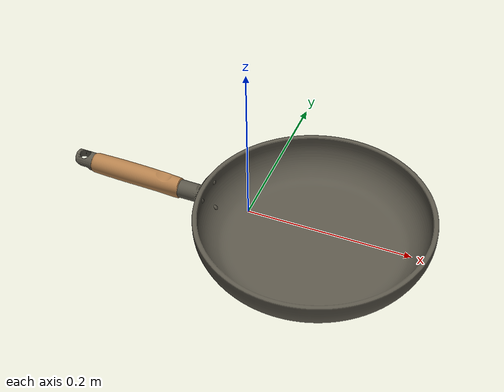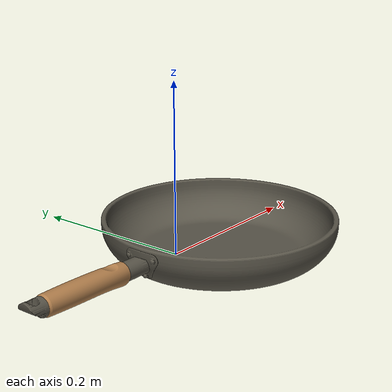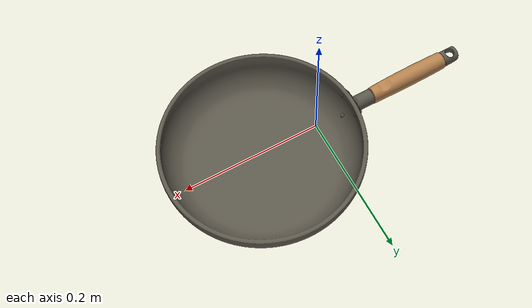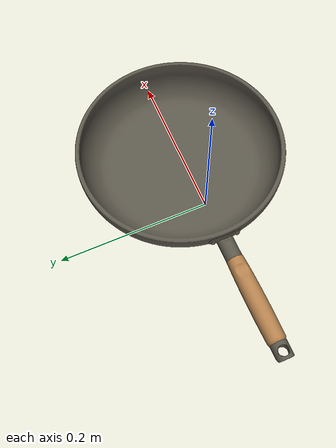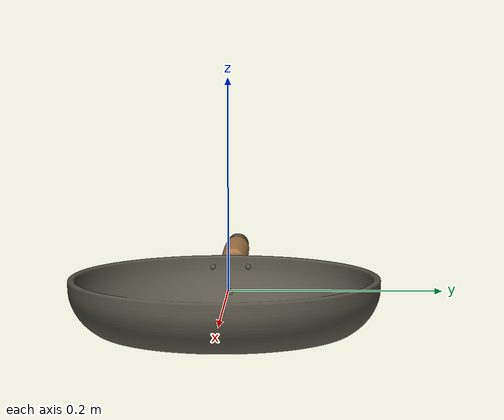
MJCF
<?xml version="1.0" ?>
<mujoco model="pan">
	<compiler angle="radian" meshdir="../meshes/" texturedir="../textures/" autolimits="true" inertiafromgeom="false"/>
	<default>
		<default class="pan_visual">
			<geom contype="0" conaffinity="0" />
		</default>
		<default class="pan_collision">
			<geom rgba="0.9 0.9 0.9 0.0" />
		</default>
	</default>
	<asset>
		<mesh name="PanMetal" file="stl/PanMetal.stl" scale="1.0 1.0 1.0"/>
		<mesh name="HandleMetal" file="stl/HandleMetal.stl" scale="1.0 1.0 1.0"/>
		<mesh name="HandleWooden" file="obj/HandleWooden.obj" scale="1.0 1.0 1.0"/>
		<material name="M_PanMetal" rgba="0.35010001063346863 0.3345000147819519 0.2874999940395355 1.0" emission="0.0"/>
		<material name="M_HandleMetal" rgba="0.35010001063346863 0.3345000147819519 0.2874999940395355 1.0" emission="0.0"/>
		<material name="M_HandleWooden" texture="T_HandleWooden"/>
		<texture name="T_HandleWooden" type="2d" file="T_HandleWooden.png"/>
	</asset>
	<asset>
		<mesh name="UCX_Pan_001" file="stl/UCX_Pan_001.stl" />
		<mesh name="UCX_Pan_002" file="stl/UCX_Pan_002.stl" />
		<mesh name="UCX_Pan_003" file="stl/UCX_Pan_003.stl" />
		<mesh name="UCX_Pan_004" file="stl/UCX_Pan_004.stl" />
		<mesh name="UCX_Pan_005" file="stl/UCX_Pan_005.stl" />
		<mesh name="UCX_Pan_006" file="stl/UCX_Pan_006.stl" />
		<mesh name="UCX_Pan_007" file="stl/UCX_Pan_007.stl" />
		<mesh name="UCX_Pan_008" file="stl/UCX_Pan_008.stl" />
		<mesh name="UCX_Pan_009" file="stl/UCX_Pan_009.stl" />
		<mesh name="UCX_Pan_010" file="stl/UCX_Pan_010.stl" />
		<mesh name="UCX_Pan_011" file="stl/UCX_Pan_011.stl" />
		<mesh name="UCX_Pan_012" file="stl/UCX_Pan_012.stl" />
		<mesh name="UCX_Pan_013" file="stl/UCX_Pan_013.stl" />
		<mesh name="UCX_Pan_014" file="stl/UCX_Pan_014.stl" />
		<mesh name="UCX_Pan_015" file="stl/UCX_Pan_015.stl" />
		<mesh name="UCX_Pan_016" file="stl/UCX_Pan_016.stl" />
		<mesh name="UCX_Pan_017" file="stl/UCX_Pan_017.stl" />
		<mesh name="UCX_Pan_018" file="stl/UCX_Pan_018.stl" />
		<mesh name="UCX_Pan_019" file="stl/UCX_Pan_019.stl" />
		<mesh name="UCX_Pan_020" file="stl/UCX_Pan_020.stl" />
		<mesh name="UCX_Pan_021" file="stl/UCX_Pan_021.stl" />
		<mesh name="UCX_Pan_022" file="stl/UCX_Pan_022.stl" />
		<mesh name="UCX_Pan_023" file="stl/UCX_Pan_023.stl" />
		<mesh name="UCX_Pan_024" file="stl/UCX_Pan_024.stl" />
		<mesh name="UCX_Pan_025" file="stl/UCX_Pan_025.stl" />
		<mesh name="UCX_Pan_026" file="stl/UCX_Pan_026.stl" />
		<mesh name="UCX_Pan_027" file="stl/UCX_Pan_027.stl" />
		<mesh name="UCX_Pan_028" file="stl/UCX_Pan_028.stl" />
		<mesh name="UCX_Pan_029" file="stl/UCX_Pan_029.stl" />
		<mesh name="UCX_Pan_030" file="stl/UCX_Pan_030.stl" />
		<mesh name="UCX_Pan_031" file="stl/UCX_Pan_031.stl" />
		<mesh name="UCX_Pan_032" file="stl/UCX_Pan_032.stl" />
		<mesh name="UCX_Pan_033" file="stl/UCX_Pan_033.stl" />
		<mesh name="UCX_Pan_034" file="stl/UCX_Pan_034.stl" />
		<mesh name="UCX_Pan_035" file="stl/UCX_Pan_035.stl" />
		<mesh name="UCX_Pan_036" file="stl/UCX_Pan_036.stl" />
		<mesh name="UCX_Pan_037" file="stl/UCX_Pan_037.stl" />
		<mesh name="UCX_Pan_038" file="stl/UCX_Pan_038.stl" />
		<mesh name="UCX_Pan_039" file="stl/UCX_Pan_039.stl" />
		<mesh name="UCX_Pan_040" file="stl/UCX_Pan_040.stl" />
		<mesh name="UCX_Pan_041" file="stl/UCX_Pan_041.stl" />
		<mesh name="UCX_Pan_042" file="stl/UCX_Pan_042.stl" />
		<mesh name="UCX_Pan_043" file="stl/UCX_Pan_043.stl" />
		<mesh name="UCX_Pan_044" file="stl/UCX_Pan_044.stl" />
		<mesh name="UCX_Pan_045" file="stl/UCX_Pan_045.stl" />
		<mesh name="UCX_Pan_046" file="stl/UCX_Pan_046.stl" />
		<mesh name="UCX_Pan_047" file="stl/UCX_Pan_047.stl" />
		<mesh name="UCX_Pan_048" file="stl/UCX_Pan_048.stl" />
		<mesh name="UCX_Pan_049" file="stl/UCX_Pan_049.stl" />
		<mesh name="UCX_Pan_050" file="stl/UCX_Pan_050.stl" />
		<mesh name="UCX_Pan_051" file="stl/UCX_Pan_051.stl" />
		<mesh name="UCX_Pan_052" file="stl/UCX_Pan_052.stl" />
		<mesh name="UCX_Pan_053" file="stl/UCX_Pan_053.stl" />
		<mesh name="UCX_Pan_054" file="stl/UCX_Pan_054.stl" />
		<mesh name="UCX_Pan_055" file="stl/UCX_Pan_055.stl" />
		<mesh name="UCX_Pan_056" file="stl/UCX_Pan_056.stl" />
		<mesh name="UCX_Pan_057" file="stl/UCX_Pan_057.stl" />
		<mesh name="UCX_Pan_058" file="stl/UCX_Pan_058.stl" />
		<mesh name="UCX_Pan_059" file="stl/UCX_Pan_059.stl" />
		<mesh name="UCX_Pan_060" file="stl/UCX_Pan_060.stl" />
		<mesh name="UCX_Pan_061" file="stl/UCX_Pan_061.stl" />
		<mesh name="UCX_Pan_062" file="stl/UCX_Pan_062.stl" />
		<mesh name="UCX_Pan_063" file="stl/UCX_Pan_063.stl" />
		<mesh name="UCX_Pan_064" file="stl/UCX_Pan_064.stl" />
		<mesh name="UCX_Pan_065" file="stl/UCX_Pan_065.stl" />
		<mesh name="UCX_Pan_066" file="stl/UCX_Pan_066.stl" />
		<mesh name="UCX_Pan_067" file="stl/UCX_Pan_067.stl" />
		<mesh name="UCX_Pan_068" file="stl/UCX_Pan_068.stl" />
		<mesh name="UCX_Pan_069" file="stl/UCX_Pan_069.stl" />
		<mesh name="UCX_Pan_070" file="stl/UCX_Pan_070.stl" />
		<mesh name="UCX_Pan_071" file="stl/UCX_Pan_071.stl" />
		<mesh name="UCX_Pan_072" file="stl/UCX_Pan_072.stl" />
		<mesh name="UCX_Pan_073" file="stl/UCX_Pan_073.stl" />
		<mesh name="UCX_Pan_074" file="stl/UCX_Pan_074.stl" />
		<mesh name="UCX_Pan_075" file="stl/UCX_Pan_075.stl" />
		<mesh name="UCX_Pan_076" file="stl/UCX_Pan_076.stl" />
		<mesh name="UCX_Pan_077" file="stl/UCX_Pan_077.stl" />
		<mesh name="UCX_Pan_078" file="stl/UCX_Pan_078.stl" />
		<mesh name="UCX_Pan_079" file="stl/UCX_Pan_079.stl" />
		<mesh name="UCX_Pan_080" file="stl/UCX_Pan_080.stl" />
		<mesh name="UCX_Pan_081" file="stl/UCX_Pan_081.stl" />
		<mesh name="UCX_Pan_082" file="stl/UCX_Pan_082.stl" />
		<mesh name="UCX_Pan_083" file="stl/UCX_Pan_083.stl" />
		<mesh name="UCX_Pan_084" file="stl/UCX_Pan_084.stl" />
		<mesh name="UCX_Pan_085" file="stl/UCX_Pan_085.stl" />
		<mesh name="UCX_Pan_086" file="stl/UCX_Pan_086.stl" />
		<mesh name="UCX_Pan_087" file="stl/UCX_Pan_087.stl" />
		<mesh name="UCX_Pan_088" file="stl/UCX_Pan_088.stl" />
		<mesh name="UCX_Pan_089" file="stl/UCX_Pan_089.stl" />
		<mesh name="UCX_Pan_090" file="stl/UCX_Pan_090.stl" />
		<mesh name="UCX_Pan_091" file="stl/UCX_Pan_091.stl" />
		<mesh name="UCX_Pan_092" file="stl/UCX_Pan_092.stl" />
		<mesh name="UCX_Pan_093" file="stl/UCX_Pan_093.stl" />
		<mesh name="UCX_Pan_094" file="stl/UCX_Pan_094.stl" />
		<mesh name="UCX_Pan_095" file="stl/UCX_Pan_095.stl" />
		<mesh name="UCX_Pan_096" file="stl/UCX_Pan_096.stl" />
		<mesh name="UCX_Pan_097" file="stl/UCX_Pan_097.stl" />
		<mesh name="UCX_Pan_098" file="stl/UCX_Pan_098.stl" />
		<mesh name="UCX_Pan_099" file="stl/UCX_Pan_099.stl" />
		<mesh name="UCX_Pan_100" file="stl/UCX_Pan_100.stl" />
		<mesh name="UCX_Pan_101" file="stl/UCX_Pan_101.stl" />
		<mesh name="UCX_Pan_102" file="stl/UCX_Pan_102.stl" />
		<mesh name="UCX_Pan_103" file="stl/UCX_Pan_103.stl" />
		<mesh name="UCX_Pan_104" file="stl/UCX_Pan_104.stl" />
		<mesh name="UCX_Pan_105" file="stl/UCX_Pan_105.stl" />
		<mesh name="UCX_Pan_106" file="stl/UCX_Pan_106.stl" />
		<mesh name="UCX_Pan_107" file="stl/UCX_Pan_107.stl" />
		<mesh name="UCX_Pan_108" file="stl/UCX_Pan_108.stl" />
		<mesh name="UCX_Pan_109" file="stl/UCX_Pan_109.stl" />
		<mesh name="UCX_Pan_110" file="stl/UCX_Pan_110.stl" />
		<mesh name="UCX_Pan_111" file="stl/UCX_Pan_111.stl" />
		<mesh name="UCX_Pan_112" file="stl/UCX_Pan_112.stl" />
		<mesh name="UCX_Pan_113" file="stl/UCX_Pan_113.stl" />
		<mesh name="UCX_Pan_114" file="stl/UCX_Pan_114.stl" />
		<mesh name="UCX_Pan_115" file="stl/UCX_Pan_115.stl" />
		<mesh name="UCX_Pan_116" file="stl/UCX_Pan_116.stl" />
		<mesh name="UCX_Pan_117" file="stl/UCX_Pan_117.stl" />
		<mesh name="UCX_Pan_118" file="stl/UCX_Pan_118.stl" />
		<mesh name="UCX_Pan_119" file="stl/UCX_Pan_119.stl" />
		<mesh name="UCX_Pan_120" file="stl/UCX_Pan_120.stl" />
		<mesh name="UCX_Pan_121" file="stl/UCX_Pan_121.stl" />
		<mesh name="UCX_Pan_122" file="stl/UCX_Pan_122.stl" />
		<mesh name="UCX_Pan_123" file="stl/UCX_Pan_123.stl" />
		<mesh name="UCX_Pan_124" file="stl/UCX_Pan_124.stl" />
		<mesh name="UCX_Pan_125" file="stl/UCX_Pan_125.stl" />
		<mesh name="UCX_Pan_126" file="stl/UCX_Pan_126.stl" />
		<mesh name="UCX_Pan_127" file="stl/UCX_Pan_127.stl" />
		<mesh name="UCX_Pan_128" file="stl/UCX_Pan_128.stl" />
		<mesh name="UCX_Pan_129" file="stl/UCX_Pan_129.stl" />
		<mesh name="UCX_Pan_130" file="stl/UCX_Pan_130.stl" />
		<mesh name="UCX_Pan_131" file="stl/UCX_Pan_131.stl" />
		<mesh name="UCX_Pan_132" file="stl/UCX_Pan_132.stl" />
		<mesh name="UCX_Pan_133" file="stl/UCX_Pan_133.stl" />
		<mesh name="UCX_Pan_134" file="stl/UCX_Pan_134.stl" />
		<mesh name="UCX_Pan_135" file="stl/UCX_Pan_135.stl" />
		<mesh name="UCX_Pan_136" file="stl/UCX_Pan_136.stl" />
		<mesh name="UCX_Pan_137" file="stl/UCX_Pan_137.stl" />
		<mesh name="UCX_Pan_138" file="stl/UCX_Pan_138.stl" />
		<mesh name="UCX_Pan_139" file="stl/UCX_Pan_139.stl" />
		<mesh name="UCX_Pan_140" file="stl/UCX_Pan_140.stl" />
		<mesh name="UCX_Pan_141" file="stl/UCX_Pan_141.stl" />
		<mesh name="UCX_Pan_142" file="stl/UCX_Pan_142.stl" />
		<mesh name="UCX_Pan_143" file="stl/UCX_Pan_143.stl" />
		<mesh name="UCX_Pan_144" file="stl/UCX_Pan_144.stl" />
		<mesh name="UCX_Pan_145" file="stl/UCX_Pan_145.stl" />
		<mesh name="UCX_Pan_146" file="stl/UCX_Pan_146.stl" />
		<mesh name="UCX_Pan_147" file="stl/UCX_Pan_147.stl" />
		<mesh name="UCX_Pan_148" file="stl/UCX_Pan_148.stl" />
		<mesh name="UCX_Pan_149" file="stl/UCX_Pan_149.stl" />
		<mesh name="UCX_Pan_150" file="stl/UCX_Pan_150.stl" />
		<mesh name="UCX_Pan_151" file="stl/UCX_Pan_151.stl" />
		<mesh name="UCX_Pan_152" file="stl/UCX_Pan_152.stl" />
		<mesh name="UCX_Pan_153" file="stl/UCX_Pan_153.stl" />
		<mesh name="UCX_Pan_154" file="stl/UCX_Pan_154.stl" />
		<mesh name="UCX_Pan_155" file="stl/UCX_Pan_155.stl" />
		<mesh name="UCX_Pan_156" file="stl/UCX_Pan_156.stl" />
		<mesh name="UCX_Pan_157" file="stl/UCX_Pan_157.stl" />
		<mesh name="UCX_Pan_158" file="stl/UCX_Pan_158.stl" />
		<mesh name="UCX_Pan_159" file="stl/UCX_Pan_159.stl" />
		<mesh name="UCX_Pan_160" file="stl/UCX_Pan_160.stl" />
		<mesh name="UCX_Pan_161" file="stl/UCX_Pan_161.stl" />
		<mesh name="UCX_Pan_162" file="stl/UCX_Pan_162.stl" />
		<mesh name="UCX_Pan_163" file="stl/UCX_Pan_163.stl" />
		<mesh name="UCX_Pan_164" file="stl/UCX_Pan_164.stl" />
		<mesh name="UCX_Pan_165" file="stl/UCX_Pan_165.stl" />
		<mesh name="UCX_Pan_166" file="stl/UCX_Pan_166.stl" />
		<mesh name="UCX_Pan_167" file="stl/UCX_Pan_167.stl" />
		<mesh name="UCX_Pan_168" file="stl/UCX_Pan_168.stl" />
		<mesh name="UCX_Pan_169" file="stl/UCX_Pan_169.stl" />
		<mesh name="UCX_Pan_170" file="stl/UCX_Pan_170.stl" />
		<mesh name="UCX_Pan_171" file="stl/UCX_Pan_171.stl" />
		<mesh name="UCX_Pan_172" file="stl/UCX_Pan_172.stl" />
		<mesh name="UCX_Pan_173" file="stl/UCX_Pan_173.stl" />
	</asset>
	<worldbody>
		<body name="pan" pos="0.0 0.0 0.0" quat="1.0 0.0 0.0 0.0">
			<freejoint />
			<geom name="UCX_Pan_001" type="mesh" pos="0.0 0.0 0.0" quat="1.0 0.0 0.0 0.0" mesh="UCX_Pan_001" class="pan_collision"/>
			<geom name="UCX_Pan_002" type="mesh" pos="0.0 0.0 0.0" quat="1.0 0.0 0.0 0.0" mesh="UCX_Pan_002" class="pan_collision"/>
			<geom name="UCX_Pan_003" type="mesh" pos="0.0 0.0 0.0" quat="1.0 0.0 0.0 0.0" mesh="UCX_Pan_003" class="pan_collision"/>
			<geom name="UCX_Pan_004" type="mesh" pos="0.0 0.0 0.0" quat="1.0 0.0 0.0 0.0" mesh="UCX_Pan_004" class="pan_collision"/>
			<geom name="UCX_Pan_005" type="mesh" pos="0.0 0.0 0.0" quat="1.0 0.0 0.0 0.0" mesh="UCX_Pan_005" class="pan_collision"/>
			<geom name="UCX_Pan_006" type="mesh" pos="0.0 0.0 0.0" quat="1.0 0.0 0.0 0.0" mesh="UCX_Pan_006" class="pan_collision"/>
			<geom name="UCX_Pan_007" type="mesh" pos="0.0 0.0 0.0" quat="1.0 0.0 0.0 0.0" mesh="UCX_Pan_007" class="pan_collision"/>
			<geom name="UCX_Pan_008" type="mesh" pos="0.0 0.0 0.0" quat="1.0 0.0 0.0 0.0" mesh="UCX_Pan_008" class="pan_collision"/>
			<geom name="UCX_Pan_009" type="mesh" pos="0.0 0.0 0.0" quat="1.0 0.0 0.0 0.0" mesh="UCX_Pan_009" class="pan_collision"/>
			<geom name="UCX_Pan_010" type="mesh" pos="0.0 0.0 0.0" quat="1.0 0.0 0.0 0.0" mesh="UCX_Pan_010" class="pan_collision"/>
			<geom name="UCX_Pan_011" type="mesh" pos="0.0 0.0 0.0" quat="1.0 0.0 0.0 0.0" mesh="UCX_Pan_011" class="pan_collision"/>
			<geom name="UCX_Pan_012" type="mesh" pos="0.0 0.0 0.0" quat="1.0 0.0 0.0 0.0" mesh="UCX_Pan_012" class="pan_collision"/>
			<geom name="UCX_Pan_013" type="mesh" pos="0.0 0.0 0.0" quat="1.0 0.0 0.0 0.0" mesh="UCX_Pan_013" class="pan_collision"/>
			<geom name="UCX_Pan_014" type="mesh" pos="0.0 0.0 0.0" quat="1.0 0.0 0.0 0.0" mesh="UCX_Pan_014" class="pan_collision"/>
			<geom name="UCX_Pan_015" type="mesh" pos="0.0 0.0 0.0" quat="1.0 0.0 0.0 0.0" mesh="UCX_Pan_015" class="pan_collision"/>
			<geom name="UCX_Pan_016" type="mesh" pos="0.0 0.0 0.0" quat="1.0 0.0 0.0 0.0" mesh="UCX_Pan_016" class="pan_collision"/>
			<geom name="UCX_Pan_017" type="mesh" pos="0.0 0.0 0.0" quat="1.0 0.0 0.0 0.0" mesh="UCX_Pan_017" class="pan_collision"/>
			<geom name="UCX_Pan_018" type="mesh" pos="0.0 0.0 0.0" quat="1.0 0.0 0.0 0.0" mesh="UCX_Pan_018" class="pan_collision"/>
			<geom name="UCX_Pan_019" type="mesh" pos="0.0 0.0 0.0" quat="1.0 0.0 0.0 0.0" mesh="UCX_Pan_019" class="pan_collision"/>
			<geom name="UCX_Pan_020" type="mesh" pos="0.0 0.0 0.0" quat="1.0 0.0 0.0 0.0" mesh="UCX_Pan_020" class="pan_collision"/>
			<geom name="UCX_Pan_021" type="mesh" pos="0.0 0.0 0.0" quat="1.0 0.0 0.0 0.0" mesh="UCX_Pan_021" class="pan_collision"/>
			<geom name="UCX_Pan_022" type="mesh" pos="0.0 0.0 0.0" quat="1.0 0.0 0.0 0.0" mesh="UCX_Pan_022" class="pan_collision"/>
			<geom name="UCX_Pan_023" type="mesh" pos="0.0 0.0 0.0" quat="1.0 0.0 0.0 0.0" mesh="UCX_Pan_023" class="pan_collision"/>
			<geom name="UCX_Pan_024" type="mesh" pos="0.0 0.0 0.0" quat="1.0 0.0 0.0 0.0" mesh="UCX_Pan_024" class="pan_collision"/>
			<geom name="UCX_Pan_025" type="mesh" pos="0.0 0.0 0.0" quat="1.0 0.0 0.0 0.0" mesh="UCX_Pan_025" class="pan_collision"/>
			<geom name="UCX_Pan_026" type="mesh" pos="0.0 0.0 0.0" quat="1.0 0.0 0.0 0.0" mesh="UCX_Pan_026" class="pan_collision"/>
			<geom name="UCX_Pan_027" type="mesh" pos="0.0 0.0 0.0" quat="1.0 0.0 0.0 0.0" mesh="UCX_Pan_027" class="pan_collision"/>
			<geom name="UCX_Pan_028" type="mesh" pos="0.0 0.0 0.0" quat="1.0 0.0 0.0 0.0" mesh="UCX_Pan_028" class="pan_collision"/>
			<geom name="UCX_Pan_029" type="mesh" pos="0.0 0.0 0.0" quat="1.0 0.0 0.0 0.0" mesh="UCX_Pan_029" class="pan_collision"/>
			<geom name="UCX_Pan_030" type="mesh" pos="0.0 0.0 0.0" quat="1.0 0.0 0.0 0.0" mesh="UCX_Pan_030" class="pan_collision"/>
			<geom name="UCX_Pan_031" type="mesh" pos="0.0 0.0 0.0" quat="1.0 0.0 0.0 0.0" mesh="UCX_Pan_031" class="pan_collision"/>
			<geom name="UCX_Pan_032" type="mesh" pos="0.0 0.0 0.0" quat="1.0 0.0 0.0 0.0" mesh="UCX_Pan_032" class="pan_collision"/>
			<geom name="UCX_Pan_033" type="mesh" pos="0.0 0.0 0.0" quat="1.0 0.0 0.0 0.0" mesh="UCX_Pan_033" class="pan_collision"/>
			<geom name="UCX_Pan_034" type="mesh" pos="0.0 0.0 0.0" quat="1.0 0.0 0.0 0.0" mesh="UCX_Pan_034" class="pan_collision"/>
			<geom name="UCX_Pan_035" type="mesh" pos="0.0 0.0 0.0" quat="1.0 0.0 0.0 0.0" mesh="UCX_Pan_035" class="pan_collision"/>
			<geom name="UCX_Pan_036" type="mesh" pos="0.0 0.0 0.0" quat="1.0 0.0 0.0 0.0" mesh="UCX_Pan_036" class="pan_collision"/>
			<geom name="UCX_Pan_037" type="mesh" pos="0.0 0.0 0.0" quat="1.0 0.0 0.0 0.0" mesh="UCX_Pan_037" class="pan_collision"/>
			<geom name="UCX_Pan_038" type="mesh" pos="0.0 0.0 0.0" quat="1.0 0.0 0.0 0.0" mesh="UCX_Pan_038" class="pan_collision"/>
			<geom name="UCX_Pan_039" type="mesh" pos="0.0 0.0 0.0" quat="1.0 0.0 0.0 0.0" mesh="UCX_Pan_039" class="pan_collision"/>
			<geom name="UCX_Pan_040" type="mesh" pos="0.0 0.0 0.0" quat="1.0 0.0 0.0 0.0" mesh="UCX_Pan_040" class="pan_collision"/>
			<geom name="UCX_Pan_041" type="mesh" pos="0.0 0.0 0.0" quat="1.0 0.0 0.0 0.0" mesh="UCX_Pan_041" class="pan_collision"/>
			<geom name="UCX_Pan_042" type="mesh" pos="0.0 0.0 0.0" quat="1.0 0.0 0.0 0.0" mesh="UCX_Pan_042" class="pan_collision"/>
			<geom name="UCX_Pan_043" type="mesh" pos="0.0 0.0 0.0" quat="1.0 0.0 0.0 0.0" mesh="UCX_Pan_043" class="pan_collision"/>
			<geom name="UCX_Pan_044" type="mesh" pos="0.0 0.0 0.0" quat="1.0 0.0 0.0 0.0" mesh="UCX_Pan_044" class="pan_collision"/>
			<geom name="UCX_Pan_045" type="mesh" pos="0.0 0.0 0.0" quat="1.0 0.0 0.0 0.0" mesh="UCX_Pan_045" class="pan_collision"/>
			<geom name="UCX_Pan_046" type="mesh" pos="0.0 0.0 0.0" quat="1.0 0.0 0.0 0.0" mesh="UCX_Pan_046" class="pan_collision"/>
			<geom name="UCX_Pan_047" type="mesh" pos="0.0 0.0 0.0" quat="1.0 0.0 0.0 0.0" mesh="UCX_Pan_047" class="pan_collision"/>
			<geom name="UCX_Pan_048" type="mesh" pos="0.0 0.0 0.0" quat="1.0 0.0 0.0 0.0" mesh="UCX_Pan_048" class="pan_collision"/>
			<geom name="UCX_Pan_049" type="mesh" pos="0.0 0.0 0.0" quat="1.0 0.0 0.0 0.0" mesh="UCX_Pan_049" class="pan_collision"/>
			<geom name="UCX_Pan_050" type="mesh" pos="0.0 0.0 0.0" quat="1.0 0.0 0.0 0.0" mesh="UCX_Pan_050" class="pan_collision"/>
			<geom name="UCX_Pan_051" type="mesh" pos="0.0 0.0 0.0" quat="1.0 0.0 0.0 0.0" mesh="UCX_Pan_051" class="pan_collision"/>
			<geom name="UCX_Pan_052" type="mesh" pos="0.0 0.0 0.0" quat="1.0 0.0 0.0 0.0" mesh="UCX_Pan_052" class="pan_collision"/>
			<geom name="UCX_Pan_053" type="mesh" pos="0.0 0.0 0.0" quat="1.0 0.0 0.0 0.0" mesh="UCX_Pan_053" class="pan_collision"/>
			<geom name="UCX_Pan_054" type="mesh" pos="0.0 0.0 0.0" quat="1.0 0.0 0.0 0.0" mesh="UCX_Pan_054" class="pan_collision"/>
			<geom name="UCX_Pan_055" type="mesh" pos="0.0 0.0 0.0" quat="1.0 0.0 0.0 0.0" mesh="UCX_Pan_055" class="pan_collision"/>
			<geom name="UCX_Pan_056" type="mesh" pos="0.0 0.0 0.0" quat="1.0 0.0 0.0 0.0" mesh="UCX_Pan_056" class="pan_collision"/>
			<geom name="UCX_Pan_057" type="mesh" pos="0.0 0.0 0.0" quat="1.0 0.0 0.0 0.0" mesh="UCX_Pan_057" class="pan_collision"/>
			<geom name="UCX_Pan_058" type="mesh" pos="0.0 0.0 0.0" quat="1.0 0.0 0.0 0.0" mesh="UCX_Pan_058" class="pan_collision"/>
			<geom name="UCX_Pan_059" type="mesh" pos="0.0 0.0 0.0" quat="1.0 0.0 0.0 0.0" mesh="UCX_Pan_059" class="pan_collision"/>
			<geom name="UCX_Pan_060" type="mesh" pos="0.0 0.0 0.0" quat="1.0 0.0 0.0 0.0" mesh="UCX_Pan_060" class="pan_collision"/>
			<geom name="UCX_Pan_061" type="mesh" pos="0.0 0.0 0.0" quat="1.0 0.0 0.0 0.0" mesh="UCX_Pan_061" class="pan_collision"/>
			<geom name="UCX_Pan_062" type="mesh" pos="0.0 0.0 0.0" quat="1.0 0.0 0.0 0.0" mesh="UCX_Pan_062" class="pan_collision"/>
			<geom name="UCX_Pan_063" type="mesh" pos="0.0 0.0 0.0" quat="1.0 0.0 0.0 0.0" mesh="UCX_Pan_063" class="pan_collision"/>
			<geom name="UCX_Pan_064" type="mesh" pos="0.0 0.0 0.0" quat="1.0 0.0 0.0 0.0" mesh="UCX_Pan_064" class="pan_collision"/>
			<geom name="UCX_Pan_065" type="mesh" pos="0.0 0.0 0.0" quat="1.0 0.0 0.0 0.0" mesh="UCX_Pan_065" class="pan_collision"/>
			<geom name="UCX_Pan_066" type="mesh" pos="0.0 0.0 0.0" quat="1.0 0.0 0.0 0.0" mesh="UCX_Pan_066" class="pan_collision"/>
			<geom name="UCX_Pan_067" type="mesh" pos="0.0 0.0 0.0" quat="1.0 0.0 0.0 0.0" mesh="UCX_Pan_067" class="pan_collision"/>
			<geom name="UCX_Pan_068" type="mesh" pos="0.0 0.0 0.0" quat="1.0 0.0 0.0 0.0" mesh="UCX_Pan_068" class="pan_collision"/>
			<geom name="UCX_Pan_069" type="mesh" pos="0.0 0.0 0.0" quat="1.0 0.0 0.0 0.0" mesh="UCX_Pan_069" class="pan_collision"/>
			<geom name="UCX_Pan_070" type="mesh" pos="0.0 0.0 0.0" quat="1.0 0.0 0.0 0.0" mesh="UCX_Pan_070" class="pan_collision"/>
			<geom name="UCX_Pan_071" type="mesh" pos="0.0 0.0 0.0" quat="1.0 0.0 0.0 0.0" mesh="UCX_Pan_071" class="pan_collision"/>
			<geom name="UCX_Pan_072" type="mesh" pos="0.0 0.0 0.0" quat="1.0 0.0 0.0 0.0" mesh="UCX_Pan_072" class="pan_collision"/>
			<geom name="UCX_Pan_073" type="mesh" pos="0.0 0.0 0.0" quat="1.0 0.0 0.0 0.0" mesh="UCX_Pan_073" class="pan_collision"/>
			<geom name="UCX_Pan_074" type="mesh" pos="0.0 0.0 0.0" quat="1.0 0.0 0.0 0.0" mesh="UCX_Pan_074" class="pan_collision"/>
			<geom name="UCX_Pan_075" type="mesh" pos="0.0 0.0 0.0" quat="1.0 0.0 0.0 0.0" mesh="UCX_Pan_075" class="pan_collision"/>
			<geom name="UCX_Pan_076" type="mesh" pos="0.0 0.0 0.0" quat="1.0 0.0 0.0 0.0" mesh="UCX_Pan_076" class="pan_collision"/>
			<geom name="UCX_Pan_077" type="mesh" pos="0.0 0.0 0.0" quat="1.0 0.0 0.0 0.0" mesh="UCX_Pan_077" class="pan_collision"/>
			<geom name="UCX_Pan_078" type="mesh" pos="0.0 0.0 0.0" quat="1.0 0.0 0.0 0.0" mesh="UCX_Pan_078" class="pan_collision"/>
			<geom name="UCX_Pan_079" type="mesh" pos="0.0 0.0 0.0" quat="1.0 0.0 0.0 0.0" mesh="UCX_Pan_079" class="pan_collision"/>
			<geom name="UCX_Pan_080" type="mesh" pos="0.0 0.0 0.0" quat="1.0 0.0 0.0 0.0" mesh="UCX_Pan_080" class="pan_collision"/>
			<geom name="UCX_Pan_081" type="mesh" pos="0.0 0.0 0.0" quat="1.0 0.0 0.0 0.0" mesh="UCX_Pan_081" class="pan_collision"/>
			<geom name="UCX_Pan_082" type="mesh" pos="0.0 0.0 0.0" quat="1.0 0.0 0.0 0.0" mesh="UCX_Pan_082" class="pan_collision"/>
			<geom name="UCX_Pan_083" type="mesh" pos="0.0 0.0 0.0" quat="1.0 0.0 0.0 0.0" mesh="UCX_Pan_083" class="pan_collision"/>
			<geom name="UCX_Pan_084" type="mesh" pos="0.0 0.0 0.0" quat="1.0 0.0 0.0 0.0" mesh="UCX_Pan_084" class="pan_collision"/>
			<geom name="UCX_Pan_085" type="mesh" pos="0.0 0.0 0.0" quat="1.0 0.0 0.0 0.0" mesh="UCX_Pan_085" class="pan_collision"/>
			<geom name="UCX_Pan_086" type="mesh" pos="0.0 0.0 0.0" quat="1.0 0.0 0.0 0.0" mesh="UCX_Pan_086" class="pan_collision"/>
			<geom name="UCX_Pan_087" type="mesh" pos="0.0 0.0 0.0" quat="1.0 0.0 0.0 0.0" mesh="UCX_Pan_087" class="pan_collision"/>
			<geom name="UCX_Pan_088" type="mesh" pos="0.0 0.0 0.0" quat="1.0 0.0 0.0 0.0" mesh="UCX_Pan_088" class="pan_collision"/>
			<geom name="UCX_Pan_089" type="mesh" pos="0.0 0.0 0.0" quat="1.0 0.0 0.0 0.0" mesh="UCX_Pan_089" class="pan_collision"/>
			<geom name="UCX_Pan_090" type="mesh" pos="0.0 0.0 0.0" quat="1.0 0.0 0.0 0.0" mesh="UCX_Pan_090" class="pan_collision"/>
			<geom name="UCX_Pan_091" type="mesh" pos="0.0 0.0 0.0" quat="1.0 0.0 0.0 0.0" mesh="UCX_Pan_091" class="pan_collision"/>
			<geom name="UCX_Pan_092" type="mesh" pos="0.0 0.0 0.0" quat="1.0 0.0 0.0 0.0" mesh="UCX_Pan_092" class="pan_collision"/>
			<geom name="UCX_Pan_093" type="mesh" pos="0.0 0.0 0.0" quat="1.0 0.0 0.0 0.0" mesh="UCX_Pan_093" class="pan_collision"/>
			<geom name="UCX_Pan_094" type="mesh" pos="0.0 0.0 0.0" quat="1.0 0.0 0.0 0.0" mesh="UCX_Pan_094" class="pan_collision"/>
			<geom name="UCX_Pan_095" type="mesh" pos="0.0 0.0 0.0" quat="1.0 0.0 0.0 0.0" mesh="UCX_Pan_095" class="pan_collision"/>
			<geom name="UCX_Pan_096" type="mesh" pos="0.0 0.0 0.0" quat="1.0 0.0 0.0 0.0" mesh="UCX_Pan_096" class="pan_collision"/>
			<geom name="UCX_Pan_097" type="mesh" pos="0.0 0.0 0.0" quat="1.0 0.0 0.0 0.0" mesh="UCX_Pan_097" class="pan_collision"/>
			<geom name="UCX_Pan_098" type="mesh" pos="0.0 0.0 0.0" quat="1.0 0.0 0.0 0.0" mesh="UCX_Pan_098" class="pan_collision"/>
			<geom name="UCX_Pan_099" type="mesh" pos="0.0 0.0 0.0" quat="1.0 0.0 0.0 0.0" mesh="UCX_Pan_099" class="pan_collision"/>
			<geom name="UCX_Pan_100" type="mesh" pos="0.0 0.0 0.0" quat="1.0 0.0 0.0 0.0" mesh="UCX_Pan_100" class="pan_collision"/>
			<geom name="UCX_Pan_101" type="mesh" pos="0.0 0.0 0.0" quat="1.0 0.0 0.0 0.0" mesh="UCX_Pan_101" class="pan_collision"/>
			<geom name="UCX_Pan_102" type="mesh" pos="0.0 0.0 0.0" quat="1.0 0.0 0.0 0.0" mesh="UCX_Pan_102" class="pan_collision"/>
			<geom name="UCX_Pan_103" type="mesh" pos="0.0 0.0 0.0" quat="1.0 0.0 0.0 0.0" mesh="UCX_Pan_103" class="pan_collision"/>
			<geom name="UCX_Pan_104" type="mesh" pos="0.0 0.0 0.0" quat="1.0 0.0 0.0 0.0" mesh="UCX_Pan_104" class="pan_collision"/>
			<geom name="UCX_Pan_105" type="mesh" pos="0.0 0.0 0.0" quat="1.0 0.0 0.0 0.0" mesh="UCX_Pan_105" class="pan_collision"/>
			<geom name="UCX_Pan_106" type="mesh" pos="0.0 0.0 0.0" quat="1.0 0.0 0.0 0.0" mesh="UCX_Pan_106" class="pan_collision"/>
			<geom name="UCX_Pan_107" type="mesh" pos="0.0 0.0 0.0" quat="1.0 0.0 0.0 0.0" mesh="UCX_Pan_107" class="pan_collision"/>
			<geom name="UCX_Pan_108" type="mesh" pos="0.0 0.0 0.0" quat="1.0 0.0 0.0 0.0" mesh="UCX_Pan_108" class="pan_collision"/>
			<geom name="UCX_Pan_109" type="mesh" pos="0.0 0.0 0.0" quat="1.0 0.0 0.0 0.0" mesh="UCX_Pan_109" class="pan_collision"/>
			<geom name="UCX_Pan_110" type="mesh" pos="0.0 0.0 0.0" quat="1.0 0.0 0.0 0.0" mesh="UCX_Pan_110" class="pan_collision"/>
			<geom name="UCX_Pan_111" type="mesh" pos="0.0 0.0 0.0" quat="1.0 0.0 0.0 0.0" mesh="UCX_Pan_111" class="pan_collision"/>
			<geom name="UCX_Pan_112" type="mesh" pos="0.0 0.0 0.0" quat="1.0 0.0 0.0 0.0" mesh="UCX_Pan_112" class="pan_collision"/>
			<geom name="UCX_Pan_113" type="mesh" pos="0.0 0.0 0.0" quat="1.0 0.0 0.0 0.0" mesh="UCX_Pan_113" class="pan_collision"/>
			<geom name="UCX_Pan_114" type="mesh" pos="0.0 0.0 0.0" quat="1.0 0.0 0.0 0.0" mesh="UCX_Pan_114" class="pan_collision"/>
			<geom name="UCX_Pan_115" type="mesh" pos="0.0 0.0 0.0" quat="1.0 0.0 0.0 0.0" mesh="UCX_Pan_115" class="pan_collision"/>
			<geom name="UCX_Pan_116" type="mesh" pos="0.0 0.0 0.0" quat="1.0 0.0 0.0 0.0" mesh="UCX_Pan_116" class="pan_collision"/>
			<geom name="UCX_Pan_117" type="mesh" pos="0.0 0.0 0.0" quat="1.0 0.0 0.0 0.0" mesh="UCX_Pan_117" class="pan_collision"/>
			<geom name="UCX_Pan_118" type="mesh" pos="0.0 0.0 0.0" quat="1.0 0.0 0.0 0.0" mesh="UCX_Pan_118" class="pan_collision"/>
			<geom name="UCX_Pan_119" type="mesh" pos="0.0 0.0 0.0" quat="1.0 0.0 0.0 0.0" mesh="UCX_Pan_119" class="pan_collision"/>
			<geom name="UCX_Pan_120" type="mesh" pos="0.0 0.0 0.0" quat="1.0 0.0 0.0 0.0" mesh="UCX_Pan_120" class="pan_collision"/>
			<geom name="UCX_Pan_121" type="mesh" pos="0.0 0.0 0.0" quat="1.0 0.0 0.0 0.0" mesh="UCX_Pan_121" class="pan_collision"/>
			<geom name="UCX_Pan_122" type="mesh" pos="0.0 0.0 0.0" quat="1.0 0.0 0.0 0.0" mesh="UCX_Pan_122" class="pan_collision"/>
			<geom name="UCX_Pan_123" type="mesh" pos="0.0 0.0 0.0" quat="1.0 0.0 0.0 0.0" mesh="UCX_Pan_123" class="pan_collision"/>
			<geom name="UCX_Pan_124" type="mesh" pos="0.0 0.0 0.0" quat="1.0 0.0 0.0 0.0" mesh="UCX_Pan_124" class="pan_collision"/>
			<geom name="UCX_Pan_125" type="mesh" pos="0.0 0.0 0.0" quat="1.0 0.0 0.0 0.0" mesh="UCX_Pan_125" class="pan_collision"/>
			<geom name="UCX_Pan_126" type="mesh" pos="0.0 0.0 0.0" quat="1.0 0.0 0.0 0.0" mesh="UCX_Pan_126" class="pan_collision"/>
			<geom name="UCX_Pan_127" type="mesh" pos="0.0 0.0 0.0" quat="1.0 0.0 0.0 0.0" mesh="UCX_Pan_127" class="pan_collision"/>
			<geom name="UCX_Pan_128" type="mesh" pos="0.0 0.0 0.0" quat="1.0 0.0 0.0 0.0" mesh="UCX_Pan_128" class="pan_collision"/>
			<geom name="UCX_Pan_129" type="mesh" pos="0.0 0.0 0.0" quat="1.0 0.0 0.0 0.0" mesh="UCX_Pan_129" class="pan_collision"/>
			<geom name="UCX_Pan_130" type="mesh" pos="0.0 0.0 0.0" quat="1.0 0.0 0.0 0.0" mesh="UCX_Pan_130" class="pan_collision"/>
			<geom name="UCX_Pan_131" type="mesh" pos="0.0 0.0 0.0" quat="1.0 0.0 0.0 0.0" mesh="UCX_Pan_131" class="pan_collision"/>
			<geom name="UCX_Pan_132" type="mesh" pos="0.0 0.0 0.0" quat="1.0 0.0 0.0 0.0" mesh="UCX_Pan_132" class="pan_collision"/>
			<geom name="UCX_Pan_133" type="mesh" pos="0.0 0.0 0.0" quat="1.0 0.0 0.0 0.0" mesh="UCX_Pan_133" class="pan_collision"/>
			<geom name="UCX_Pan_134" type="mesh" pos="0.0 0.0 0.0" quat="1.0 0.0 0.0 0.0" mesh="UCX_Pan_134" class="pan_collision"/>
			<geom name="UCX_Pan_135" type="mesh" pos="0.0 0.0 0.0" quat="1.0 0.0 0.0 0.0" mesh="UCX_Pan_135" class="pan_collision"/>
			<geom name="UCX_Pan_136" type="mesh" pos="0.0 0.0 0.0" quat="1.0 0.0 0.0 0.0" mesh="UCX_Pan_136" class="pan_collision"/>
			<geom name="UCX_Pan_137" type="mesh" pos="0.0 0.0 0.0" quat="1.0 0.0 0.0 0.0" mesh="UCX_Pan_137" class="pan_collision"/>
			<geom name="UCX_Pan_138" type="mesh" pos="0.0 0.0 0.0" quat="1.0 0.0 0.0 0.0" mesh="UCX_Pan_138" class="pan_collision"/>
			<geom name="UCX_Pan_139" type="mesh" pos="0.0 0.0 0.0" quat="1.0 0.0 0.0 0.0" mesh="UCX_Pan_139" class="pan_collision"/>
			<geom name="UCX_Pan_140" type="mesh" pos="0.0 0.0 0.0" quat="1.0 0.0 0.0 0.0" mesh="UCX_Pan_140" class="pan_collision"/>
			<geom name="UCX_Pan_141" type="mesh" pos="0.0 0.0 0.0" quat="1.0 0.0 0.0 0.0" mesh="UCX_Pan_141" class="pan_collision"/>
			<geom name="UCX_Pan_142" type="mesh" pos="0.0 0.0 0.0" quat="1.0 0.0 0.0 0.0" mesh="UCX_Pan_142" class="pan_collision"/>
			<geom name="UCX_Pan_143" type="mesh" pos="0.0 0.0 0.0" quat="1.0 0.0 0.0 0.0" mesh="UCX_Pan_143" class="pan_collision"/>
			<geom name="UCX_Pan_144" type="mesh" pos="0.0 0.0 0.0" quat="1.0 0.0 0.0 0.0" mesh="UCX_Pan_144" class="pan_collision"/>
			<geom name="UCX_Pan_145" type="mesh" pos="0.0 0.0 0.0" quat="1.0 0.0 0.0 0.0" mesh="UCX_Pan_145" class="pan_collision"/>
			<geom name="UCX_Pan_146" type="mesh" pos="0.0 0.0 0.0" quat="1.0 0.0 0.0 0.0" mesh="UCX_Pan_146" class="pan_collision"/>
			<geom name="UCX_Pan_147" type="mesh" pos="0.0 0.0 0.0" quat="1.0 0.0 0.0 0.0" mesh="UCX_Pan_147" class="pan_collision"/>
			<geom name="UCX_Pan_148" type="mesh" pos="0.0 0.0 0.0" quat="1.0 0.0 0.0 0.0" mesh="UCX_Pan_148" class="pan_collision"/>
			<geom name="UCX_Pan_149" type="mesh" pos="0.0 0.0 0.0" quat="1.0 0.0 0.0 0.0" mesh="UCX_Pan_149" class="pan_collision"/>
			<geom name="UCX_Pan_150" type="mesh" pos="0.0 0.0 0.0" quat="1.0 0.0 0.0 0.0" mesh="UCX_Pan_150" class="pan_collision"/>
			<geom name="UCX_Pan_151" type="mesh" pos="0.0 0.0 0.0" quat="1.0 0.0 0.0 0.0" mesh="UCX_Pan_151" class="pan_collision"/>
			<geom name="UCX_Pan_152" type="mesh" pos="0.0 0.0 0.0" quat="1.0 0.0 0.0 0.0" mesh="UCX_Pan_152" class="pan_collision"/>
			<geom name="UCX_Pan_153" type="mesh" pos="0.0 0.0 0.0" quat="1.0 0.0 0.0 0.0" mesh="UCX_Pan_153" class="pan_collision"/>
			<geom name="UCX_Pan_154" type="mesh" pos="0.0 0.0 0.0" quat="1.0 0.0 0.0 0.0" mesh="UCX_Pan_154" class="pan_collision"/>
			<geom name="UCX_Pan_155" type="mesh" pos="0.0 0.0 0.0" quat="1.0 0.0 0.0 0.0" mesh="UCX_Pan_155" class="pan_collision"/>
			<geom name="UCX_Pan_156" type="mesh" pos="0.0 0.0 0.0" quat="1.0 0.0 0.0 0.0" mesh="UCX_Pan_156" class="pan_collision"/>
			<geom name="UCX_Pan_157" type="mesh" pos="0.0 0.0 0.0" quat="1.0 0.0 0.0 0.0" mesh="UCX_Pan_157" class="pan_collision"/>
			<geom name="UCX_Pan_158" type="mesh" pos="0.0 0.0 0.0" quat="1.0 0.0 0.0 0.0" mesh="UCX_Pan_158" class="pan_collision"/>
			<geom name="UCX_Pan_159" type="mesh" pos="0.0 0.0 0.0" quat="1.0 0.0 0.0 0.0" mesh="UCX_Pan_159" class="pan_collision"/>
			<geom name="UCX_Pan_160" type="mesh" pos="0.0 0.0 0.0" quat="1.0 0.0 0.0 0.0" mesh="UCX_Pan_160" class="pan_collision"/>
			<geom name="UCX_Pan_161" type="mesh" pos="0.0 0.0 0.0" quat="1.0 0.0 0.0 0.0" mesh="UCX_Pan_161" class="pan_collision"/>
			<geom name="UCX_Pan_162" type="mesh" pos="0.0 0.0 0.0" quat="1.0 0.0 0.0 0.0" mesh="UCX_Pan_162" class="pan_collision"/>
			<geom name="UCX_Pan_163" type="mesh" pos="0.0 0.0 0.0" quat="1.0 0.0 0.0 0.0" mesh="UCX_Pan_163" class="pan_collision"/>
			<geom name="UCX_Pan_164" type="mesh" pos="0.0 0.0 0.0" quat="1.0 0.0 0.0 0.0" mesh="UCX_Pan_164" class="pan_collision"/>
			<geom name="UCX_Pan_165" type="mesh" pos="0.0 0.0 0.0" quat="1.0 0.0 0.0 0.0" mesh="UCX_Pan_165" class="pan_collision"/>
			<geom name="UCX_Pan_166" type="mesh" pos="0.0 0.0 0.0" quat="1.0 0.0 0.0 0.0" mesh="UCX_Pan_166" class="pan_collision"/>
			<geom name="UCX_Pan_167" type="mesh" pos="0.0 0.0 0.0" quat="1.0 0.0 0.0 0.0" mesh="UCX_Pan_167" class="pan_collision"/>
			<geom name="UCX_Pan_168" type="mesh" pos="0.0 0.0 0.0" quat="1.0 0.0 0.0 0.0" mesh="UCX_Pan_168" class="pan_collision"/>
			<geom name="UCX_Pan_169" type="mesh" pos="0.0 0.0 0.0" quat="1.0 0.0 0.0 0.0" mesh="UCX_Pan_169" class="pan_collision"/>
			<geom name="UCX_Pan_170" type="mesh" pos="0.0 0.0 0.0" quat="1.0 0.0 0.0 0.0" mesh="UCX_Pan_170" class="pan_collision"/>
			<geom name="UCX_Pan_171" type="mesh" pos="0.0 0.0 0.0" quat="1.0 0.0 0.0 0.0" mesh="UCX_Pan_171" class="pan_collision"/>
			<geom name="UCX_Pan_172" type="mesh" pos="0.0 0.0 0.0" quat="1.0 0.0 0.0 0.0" mesh="UCX_Pan_172" class="pan_collision"/>
			<geom name="UCX_Pan_173" type="mesh" pos="0.0 0.0 0.0" quat="1.0 0.0 0.0 0.0" mesh="UCX_Pan_173" class="pan_collision"/>
			<geom name="PanMetal" type="mesh" pos="0.0 0.0 0.0" quat="1.0 0.0 0.0 0.0" mesh="PanMetal" material="M_PanMetal" class="pan_visual"/>
			<geom name="HandleWooden" type="mesh" pos="0.0 0.0 0.0" quat="1.0 0.0 0.0 0.0" mesh="HandleWooden" material="M_HandleWooden" class="pan_visual"/>
			<geom name="HandleMetal" type="mesh" pos="0.0 0.0 0.0" quat="1.0 0.0 0.0 0.0" mesh="HandleMetal" material="M_HandleMetal" class="pan_visual"/>
			<body name="pan_metal" pos="0.0 0.0 0.0" quat="1.0 0.0 0.0 0.0">
				<inertial mass="2.6286439895629883" pos="0.08990475535392761 -2.732915334036079e-07 -0.006082954816520214" quat="0.9998741745948792 -2.2729412307853636e-07 0.015862658619880676 -1.6148235317814397e-06" diaginertia="0.02098214253783226 0.04000343754887581 0.05947813764214516"/>
			</body>
			<body name="handle_wooden" pos="0.0 0.0 0.0" quat="1.0 0.0 0.0 0.0">
				<inertial mass="0.5336440801620483" pos="-0.13276457786560059 0.000123787292977795 0.00931735523045063" quat="0.712058424949646 0.701295793056488 0.023928305134177208 -0.024174852296710014" diaginertia="3.8637517718598247e-05 0.010447471402585506 0.010448549874126911"/>
			</body>
			<body name="handle_metal" pos="0.0 0.0 0.0" quat="1.0 0.0 0.0 0.0">
				<inertial mass="0.09857194870710373" pos="-0.09976198524236679 0.00013171879982110113 0.009249822236597538" quat="0.9992324113845825 0.002873531775549054 0.03906231001019478 -0.0006392072536982596" diaginertia="1.0279828529746737e-05 0.0014953159261494875 0.0014964917208999395"/>
			</body>
		</body>
	</worldbody>
	<equality/>
</mujoco>
